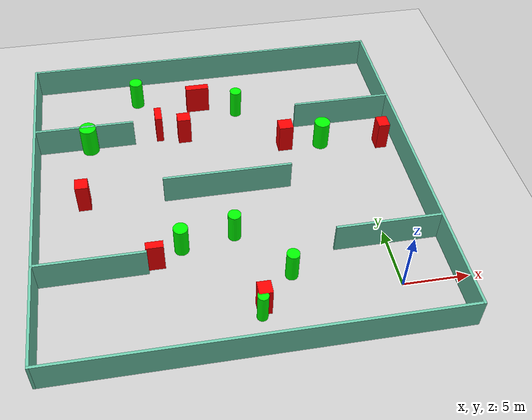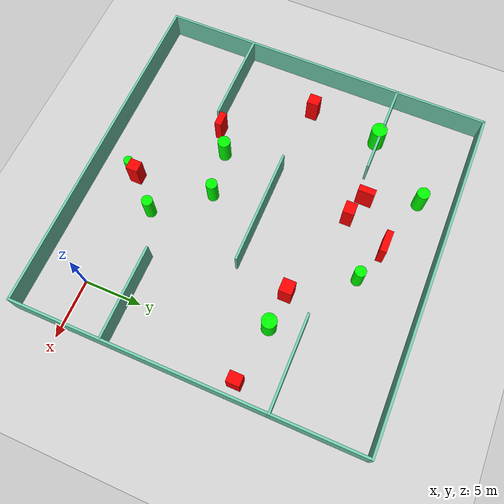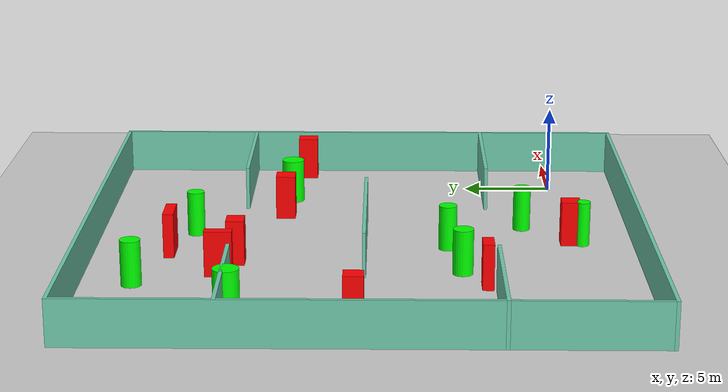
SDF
<sdf version="1.7">
 <world name="default">
  <light name="sun" type="directional">
   <pose>0 0 10 0 -0 0</pose>
   <diffuse>0.8 0.8 0.8 1</diffuse>
   <specular>0.2 0.2 0.2 1</specular>
   <attenuation>
    <range>1000</range>
    <constant>0.9</constant>
    <linear>0.01</linear>
    <quadratic>0.001</quadratic>
   </attenuation>
   <direction>-0.5 0.1 -0.9</direction>
   <spot><inner_angle>0</inner_angle><outer_angle>0</outer_angle><falloff>0</falloff></spot>
  </light>
  <model name="ground_plane">
   <static>1</static>
   <link name="link">
    <collision name="collision">
     <geometry><plane><normal>0 0 1</normal><size>100 100</size></plane></geometry>
     <surface>
      <contact><collide_bitmask>65535</collide_bitmask></contact>
      <friction><ode><mu>100</mu><mu2>50</mu2></ode></friction>
     </surface>
    </collision>
    <visual name="visual">
     <cast_shadows>0</cast_shadows>
     <geometry><plane><normal>0 0 1</normal><size>100 100</size></plane></geometry>
     <material>
      <script><uri>file://media/materials/scripts/gazebo.material</uri><name>Gazebo/Grey</name></script>
     </material>
    </visual>
   </link>
  </model>
  <gravity>0 0 -9.8</gravity>
  <magnetic_field>6e-06 2.3e-05 -4.2e-05</magnetic_field>
  <atmosphere type="adiabatic"/>
  <physics type="ode">
   <max_step_size>0.001</max_step_size>
   <real_time_factor>1</real_time_factor>
   <real_time_update_rate>1000</real_time_update_rate>
  </physics>
  <scene><ambient>0.4 0.4 0.4 1</ambient><background>0.7 0.7 0.7 1</background><shadows>1</shadows></scene>
  <spherical_coordinates>
   <surface_model>EARTH_WGS84</surface_model>
   <latitude_deg>0</latitude_deg>
   <longitude_deg>0</longitude_deg>
   <elevation>0</elevation>
   <heading_deg>0</heading_deg>
  </spherical_coordinates>
  <model name="my_base_walls">
   <link name="Wall_10">
    <collision name="Wall_10_Collision">
     <geometry><box><size>8.2 0.2 2.5</size></box></geometry>
     <pose>0 0 1.25 0 -0 0</pose>
    </collision>
    <visual name="Wall_10_Visual">
     <pose>0 0 1.25 0 -0 0</pose>
     <geometry><box><size>8.2 0.2 2.5</size></box></geometry>
     <material>
      <script><uri>file://media/materials/scripts/gazebo.material</uri><name>Gazebo/Grey</name></script>
      <ambient>0.435294 0.796078 0.67451 1</ambient>
     </material>
     <meta><layer>0</layer></meta>
    </visual>
    <pose>-11 -7 0 0 -0 0</pose>
   </link>
   <link name="Wall_12">
    <collision name="Wall_12_Collision">
     <geometry><box><size>8.2 0.2 2.5</size></box></geometry>
     <pose>0 0 1.25 0 -0 0</pose>
    </collision>
    <visual name="Wall_12_Visual">
     <pose>0 0 1.25 0 -0 0</pose>
     <geometry><box><size>8.2 0.2 2.5</size></box></geometry>
     <material>
      <script><uri>file://media/materials/scripts/gazebo.material</uri><name>Gazebo/Grey</name></script>
      <ambient>0.435294 0.796078 0.67451 1</ambient>
     </material>
     <meta><layer>0</layer></meta>
    </visual>
    <pose>-11 7 0 0 -0 0</pose>
   </link>
   <link name="Wall_14">
    <collision name="Wall_14_Collision">
     <geometry><box><size>8.2 0.2 2.5</size></box></geometry>
     <pose>0 0 1.25 0 -0 0</pose>
    </collision>
    <visual name="Wall_14_Visual">
     <pose>0 0 1.25 0 -0 0</pose>
     <geometry><box><size>8.2 0.2 2.5</size></box></geometry>
     <material>
      <script><uri>file://media/materials/scripts/gazebo.material</uri><name>Gazebo/Grey</name></script>
      <ambient>0.435294 0.796078 0.67451 1</ambient>
     </material>
     <meta><layer>0</layer></meta>
    </visual>
    <pose>11 7 0 0 -0 3.14159</pose>
   </link>
   <link name="Wall_16">
    <collision name="Wall_16_Collision">
     <geometry><box><size>10.2 0.2 2.5</size></box></geometry>
     <pose>0 0 1.25 0 -0 0</pose>
    </collision>
    <visual name="Wall_16_Visual">
     <pose>0 0 1.25 0 -0 0</pose>
     <geometry><box><size>10.2 0.2 2.5</size></box></geometry>
     <material>
      <script><uri>file://media/materials/scripts/gazebo.material</uri><name>Gazebo/Grey</name></script>
      <ambient>0.435294 0.796078 0.67451 1</ambient>
     </material>
     <meta><layer>0</layer></meta>
    </visual>
    <pose>0 0 0 0 -0 3.14159</pose>
   </link>
   <link name="Wall_2">
    <collision name="Wall_2_Collision">
     <geometry><box><size>30.2 0.2 2.5</size></box></geometry>
     <pose>0 0 1.25 0 -0 0</pose>
    </collision>
    <visual name="Wall_2_Visual">
     <pose>0 0 1.25 0 -0 0</pose>
     <geometry><box><size>30.2 0.2 2.5</size></box></geometry>
     <material>
      <script><uri>file://media/materials/scripts/gazebo.material</uri><name>Gazebo/Grey</name></script>
      <ambient>0.435294 0.796078 0.67451 1</ambient>
     </material>
     <meta><layer>0</layer></meta>
    </visual>
    <pose>0 -15 0 0 -0 3.14159</pose>
   </link>
   <link name="Wall_3">
    <collision name="Wall_3_Collision">
     <geometry><box><size>30.2 0.2 2.5</size></box></geometry>
     <pose>0 0 1.25 0 -0 0</pose>
    </collision>
    <visual name="Wall_3_Visual">
     <pose>0 0 1.25 0 -0 0</pose>
     <geometry><box><size>30.2 0.2 2.5</size></box></geometry>
     <material>
      <script><uri>file://media/materials/scripts/gazebo.material</uri><name>Gazebo/Grey</name></script>
      <ambient>0.435294 0.796078 0.67451 1</ambient>
     </material>
     <meta><layer>0</layer></meta>
    </visual>
    <pose>-15 0 0 0 -0 1.5708</pose>
   </link>
   <link name="Wall_4">
    <collision name="Wall_4_Collision">
     <geometry><box><size>30.2 0.2 2.5</size></box></geometry>
     <pose>0 0 1.25 0 -0 0</pose>
    </collision>
    <visual name="Wall_4_Visual">
     <pose>0 0 1.25 0 -0 0</pose>
     <geometry><box><size>30.2 0.2 2.5</size></box></geometry>
     <material>
      <script><uri>file://media/materials/scripts/gazebo.material</uri><name>Gazebo/Grey</name></script>
      <ambient>0.435294 0.796078 0.67451 1</ambient>
     </material>
     <meta><layer>0</layer></meta>
    </visual>
    <pose>0 15 0 0 -0 0</pose>
   </link>
   <link name="Wall_6">
    <collision name="Wall_6_Collision">
     <geometry><box><size>30.2 0.2 2.5</size></box></geometry>
     <pose>0 0 1.25 0 -0 0</pose>
    </collision>
    <visual name="Wall_6_Visual">
     <pose>0 0 1.25 0 -0 0</pose>
     <geometry><box><size>30.2 0.2 2.5</size></box></geometry>
     <material>
      <script><uri>file://media/materials/scripts/gazebo.material</uri><name>Gazebo/Grey</name></script>
      <ambient>0.435294 0.796078 0.67451 1</ambient>
     </material>
     <meta><layer>0</layer></meta>
    </visual>
    <pose>15 0 0 0 -0 1.5708</pose>
   </link>
   <link name="Wall_8">
    <collision name="Wall_8_Collision">
     <geometry><box><size>8.2 0.2 2.5</size></box></geometry>
     <pose>0 0 1.25 0 -0 0</pose>
    </collision>
    <visual name="Wall_8_Visual">
     <pose>0 0 1.25 0 -0 0</pose>
     <geometry><box><size>8.2 0.2 2.5</size></box></geometry>
     <material>
      <script><uri>file://media/materials/scripts/gazebo.material</uri><name>Gazebo/Grey</name></script>
      <ambient>0.435294 0.796078 0.67451 1</ambient>
     </material>
     <meta><layer>0</layer></meta>
    </visual>
    <pose>11 -7 0 0 -0 3.14159</pose>
   </link>
   <static>1</static>
   <pose>-11 11 0 0 -0 0</pose>
  </model>
  <model name="cylinder1">
   <static>1</static>
   <link name="link">
    <inertial>
     <mass>1</mass>
     <inertia><ixx>0.5</ixx><ixy>0</ixy><ixz>0</ixz><iyy>0.5</iyy><iyz>0</iyz><izz>1</izz></inertia>
    </inertial>
    <collision name="collision">
     <geometry><cylinder><radius>0.6866241793155884</radius><length>2.5</length></cylinder></geometry>
    </collision>
    <visual name="visual">
     <geometry><cylinder><radius>0.6866241793155884</radius><length>2.5</length></cylinder></geometry>
     <material>
      <ambient>0 1 0 1</ambient>
      <diffuse>0 1 0 1</diffuse>
      <specular>0.1 0.1 0.1 1</specular>
      <emissive>0 0 0 0</emissive>
     </material>
    </visual>
   </link>
   <pose>-21.684882138177052 17.792490504185686 1.25 0 0 0</pose>
  </model>
  <model name="cylinder2">
   <static>1</static>
   <link name="link">
    <inertial>
     <mass>1</mass>
     <inertia><ixx>0.5</ixx><ixy>0</ixy><ixz>0</ixz><iyy>0.5</iyy><iyz>0</iyz><izz>1</izz></inertia>
    </inertial>
    <collision name="collision">
     <geometry><cylinder><radius>0.4020931272305529</radius><length>2.5</length></cylinder></geometry>
    </collision>
    <visual name="visual">
     <geometry><cylinder><radius>0.4020931272305529</radius><length>2.5</length></cylinder></geometry>
     <material>
      <ambient>0 1 0 1</ambient>
      <diffuse>0 1 0 1</diffuse>
      <specular>0.1 0.1 0.1 1</specular>
      <emissive>0 0 0 0</emissive>
     </material>
    </visual>
   </link>
   <pose>-10.481023570341964 -1.0619917529188885 1.25 0 0 0</pose>
  </model>
  <model name="cylinder3">
   <static>1</static>
   <link name="link">
    <inertial>
     <mass>1</mass>
     <inertia><ixx>0.5</ixx><ixy>0</ixy><ixz>0</ixz><iyy>0.5</iyy><iyz>0</iyz><izz>1</izz></inertia>
    </inertial>
    <collision name="collision">
     <geometry><cylinder><radius>0.640117778149795</radius><length>2.5</length></cylinder></geometry>
    </collision>
    <visual name="visual">
     <geometry><cylinder><radius>0.640117778149795</radius><length>2.5</length></cylinder></geometry>
     <material>
      <ambient>0 1 0 1</ambient>
      <diffuse>0 1 0 1</diffuse>
      <specular>0.1 0.1 0.1 1</specular>
      <emissive>0 0 0 0</emissive>
     </material>
    </visual>
   </link>
   <pose>-2.3227957222098183 15.402289857207013 1.25 0 0 0</pose>
  </model>
  <model name="cylinder4">
   <static>1</static>
   <link name="link">
    <inertial>
     <mass>1</mass>
     <inertia><ixx>0.5</ixx><ixy>0</ixy><ixz>0</ixz><iyy>0.5</iyy><iyz>0</iyz><izz>1</izz></inertia>
    </inertial>
    <collision name="collision">
     <geometry><cylinder><radius>0.5546344849231897</radius><length>2.5</length></cylinder></geometry>
    </collision>
    <visual name="visual">
     <geometry><cylinder><radius>0.5546344849231897</radius><length>2.5</length></cylinder></geometry>
     <material>
      <ambient>0 1 0 1</ambient>
      <diffuse>0 1 0 1</diffuse>
      <specular>0.1 0.1 0.1 1</specular>
      <emissive>0 0 0 0</emissive>
     </material>
    </visual>
   </link>
   <pose>-15.32380813192388 5.743344933075901 1.25 0 0 0</pose>
  </model>
  <model name="cylinder5">
   <static>1</static>
   <link name="link">
    <inertial>
     <mass>1</mass>
     <inertia><ixx>0.5</ixx><ixy>0</ixy><ixz>0</ixz><iyy>0.5</iyy><iyz>0</iyz><izz>1</izz></inertia>
    </inertial>
    <collision name="collision">
     <geometry><cylinder><radius>0.5498998923210822</radius><length>2.5</length></cylinder></geometry>
    </collision>
    <visual name="visual">
     <geometry><cylinder><radius>0.5498998923210822</radius><length>2.5</length></cylinder></geometry>
     <material>
      <ambient>0 1 0 1</ambient>
      <diffuse>0 1 0 1</diffuse>
      <specular>0.1 0.1 0.1 1</specular>
      <emissive>0 0 0 0</emissive>
     </material>
    </visual>
   </link>
   <pose>-17.317509882728192 23.14836767238335 1.25 0 0 0</pose>
  </model>
  <model name="cylinder6">
   <static>1</static>
   <link name="link">
    <inertial>
     <mass>1</mass>
     <inertia><ixx>0.5</ixx><ixy>0</ixy><ixz>0</ixz><iyy>0.5</iyy><iyz>0</iyz><izz>1</izz></inertia>
    </inertial>
    <collision name="collision">
     <geometry><cylinder><radius>0.4987286458904779</radius><length>2.5</length></cylinder></geometry>
    </collision>
    <visual name="visual">
     <geometry><cylinder><radius>0.4987286458904779</radius><length>2.5</length></cylinder></geometry>
     <material>
      <ambient>0 1 0 1</ambient>
      <diffuse>0 1 0 1</diffuse>
      <specular>0.1 0.1 0.1 1</specular>
      <emissive>0 0 0 0</emissive>
     </material>
    </visual>
   </link>
   <pose>-11.222328033239341 6.432936256054903 1.25 0 0 0</pose>
  </model>
  <model name="cylinder7">
   <static>1</static>
   <link name="link">
    <inertial>
     <mass>1</mass>
     <inertia><ixx>0.5</ixx><ixy>0</ixy><ixz>0</ixz><iyy>0.5</iyy><iyz>0</iyz><izz>1</izz></inertia>
    </inertial>
    <collision name="collision">
     <geometry><cylinder><radius>0.4849629325009399</radius><length>2.5</length></cylinder></geometry>
    </collision>
    <visual name="visual">
     <geometry><cylinder><radius>0.4849629325009399</radius><length>2.5</length></cylinder></geometry>
     <material>
      <ambient>0 1 0 1</ambient>
      <diffuse>0 1 0 1</diffuse>
      <specular>0.1 0.1 0.1 1</specular>
      <emissive>0 0 0 0</emissive>
     </material>
    </visual>
   </link>
   <pose>-8.825860808476596 20.57160043997965 1.25 0 0 0</pose>
  </model>
  <model name="cylinder8">
   <static>1</static>
   <link name="link">
    <inertial>
     <mass>1</mass>
     <inertia><ixx>0.5</ixx><ixy>0</ixy><ixz>0</ixz><iyy>0.5</iyy><iyz>0</iyz><izz>1</izz></inertia>
    </inertial>
    <collision name="collision">
     <geometry><cylinder><radius>0.48254479386920474</radius><length>2.5</length></cylinder></geometry>
    </collision>
    <visual name="visual">
     <geometry><cylinder><radius>0.48254479386920474</radius><length>2.5</length></cylinder></geometry>
     <material>
      <ambient>0 1 0 1</ambient>
      <diffuse>0 1 0 1</diffuse>
      <specular>0.1 0.1 0.1 1</specular>
      <emissive>0 0 0 0</emissive>
     </material>
    </visual>
   </link>
   <pose>-7.717140296960274 2.1302035844005243 1.25 0 0 0</pose>
  </model>
  <model name="box1">
   <static>1</static>
   <link name="link">
    <inertial>
     <mass>1</mass>
     <inertia><ixx>0.083</ixx><ixy>0</ixy><ixz>0</ixz><iyy>0.083</iyy><iyz>0</iyz><izz>0.083</izz></inertia>
    </inertial>
    <collision name="collision">
     <geometry><box><size>1.167624912538019 1.108562035982584 2.5</size></box></geometry>
    </collision>
    <visual name="visual">
     <geometry><box><size>1.167624912538019 1.108562035982584 2.5</size></box></geometry>
     <material>
      <ambient>1 0 0 1</ambient>
      <diffuse>1 0 0 1</diffuse>
      <specular>0.1 0.1 0.1 1</specular>
      <emissive>0 0 0 0</emissive>
     </material>
    </visual>
    <sensor name="my_contact" type="contact">
     <contact><collision>box_collision</collision><topic>__default_topic__</topic></contact>
    </sensor>
   </link>
   <pose>-5.415057713098914 15.67023308541497 1.25 0 0 0</pose>
  </model>
  <model name="box2">
   <static>1</static>
   <link name="link">
    <inertial>
     <mass>1</mass>
     <inertia><ixx>0.083</ixx><ixy>0</ixy><ixz>0</ixz><iyy>0.083</iyy><iyz>0</iyz><izz>0.083</izz></inertia>
    </inertial>
    <collision name="collision">
     <geometry><box><size>1.967518912423896 0.5845737912918852 2.5</size></box></geometry>
    </collision>
    <visual name="visual">
     <geometry><box><size>1.967518912423896 0.5845737912918852 2.5</size></box></geometry>
     <material>
      <ambient>1 0 0 1</ambient>
      <diffuse>1 0 0 1</diffuse>
      <specular>0.1 0.1 0.1 1</specular>
      <emissive>0 0 0 0</emissive>
     </material>
    </visual>
    <sensor name="my_contact" type="contact">
     <contact><collision>box_collision</collision><topic>__default_topic__</topic></contact>
    </sensor>
   </link>
   <pose>-12.078947067978383 21.67364776506823 1.25 0 0 0</pose>
  </model>
  <model name="box3">
   <static>1</static>
   <link name="link">
    <inertial>
     <mass>1</mass>
     <inertia><ixx>0.083</ixx><ixy>0</ixy><ixz>0</ixz><iyy>0.083</iyy><iyz>0</iyz><izz>0.083</izz></inertia>
    </inertial>
    <collision name="collision">
     <geometry><box><size>0.5847489308173117 1.4865565376857304 2.5</size></box></geometry>
    </collision>
    <visual name="visual">
     <geometry><box><size>0.5847489308173117 1.4865565376857304 2.5</size></box></geometry>
     <material>
      <ambient>1 0 0 1</ambient>
      <diffuse>1 0 0 1</diffuse>
      <specular>0.1 0.1 0.1 1</specular>
      <emissive>0 0 0 0</emissive>
     </material>
    </visual>
    <sensor name="my_contact" type="contact">
     <contact><collision>box_collision</collision><topic>__default_topic__</topic></contact>
    </sensor>
   </link>
   <pose>-15.766645847278184 18.714212144473134 1.25 0 0 0</pose>
  </model>
  <model name="box4">
   <static>1</static>
   <link name="link">
    <inertial>
     <mass>1</mass>
     <inertia><ixx>0.083</ixx><ixy>0</ixy><ixz>0</ixz><iyy>0.083</iyy><iyz>0</iyz><izz>0.083</izz></inertia>
    </inertial>
    <collision name="collision">
     <geometry><box><size>1.1016909473273784 0.9843914084535331 2.5</size></box></geometry>
    </collision>
    <visual name="visual">
     <geometry><box><size>1.1016909473273784 0.9843914084535331 2.5</size></box></geometry>
     <material>
      <ambient>1 0 0 1</ambient>
      <diffuse>1 0 0 1</diffuse>
      <specular>0.1 0.1 0.1 1</specular>
      <emissive>0 0 0 0</emissive>
     </material>
    </visual>
    <sensor name="my_contact" type="contact">
     <contact><collision>box_collision</collision><topic>__default_topic__</topic></contact>
    </sensor>
   </link>
   <pose>-13.679811329779278 17.949841467908644 1.25 0 0 0</pose>
  </model>
  <model name="box5">
   <static>1</static>
   <link name="link">
    <inertial>
     <mass>1</mass>
     <inertia><ixx>0.083</ixx><ixy>0</ixy><ixz>0</ixz><iyy>0.083</iyy><iyz>0</iyz><izz>0.083</izz></inertia>
    </inertial>
    <collision name="collision">
     <geometry><box><size>0.9356496990141416 1.1467897688435333 2.5</size></box></geometry>
    </collision>
    <visual name="visual">
     <geometry><box><size>0.9356496990141416 1.1467897688435333 2.5</size></box></geometry>
     <material>
      <ambient>1 0 0 1</ambient>
      <diffuse>1 0 0 1</diffuse>
      <specular>0.1 0.1 0.1 1</specular>
      <emissive>0 0 0 0</emissive>
     </material>
    </visual>
    <sensor name="my_contact" type="contact">
     <contact><collision>box_collision</collision><topic>__default_topic__</topic></contact>
    </sensor>
   </link>
   <pose>2.673898033479798 14.70342200276513 1.25 0 0 0</pose>
  </model>
  <model name="box6">
   <static>1</static>
   <link name="link">
    <inertial>
     <mass>1</mass>
     <inertia><ixx>0.083</ixx><ixy>0</ixy><ixz>0</ixz><iyy>0.083</iyy><iyz>0</iyz><izz>0.083</izz></inertia>
    </inertial>
    <collision name="collision">
     <geometry><box><size>1.003744342269647 1.0498213731741264 2.5</size></box></geometry>
    </collision>
    <visual name="visual">
     <geometry><box><size>1.003744342269647 1.0498213731741264 2.5</size></box></geometry>
     <material>
      <ambient>1 0 0 1</ambient>
      <diffuse>1 0 0 1</diffuse>
      <specular>0.1 0.1 0.1 1</specular>
      <emissive>0 0 0 0</emissive>
     </material>
    </visual>
    <sensor name="my_contact" type="contact">
     <contact><collision>box_collision</collision><topic>__default_topic__</topic></contact>
    </sensor>
   </link>
   <pose>-10.246463419743009 -0.39175547176034664 1.25 0 0 0</pose>
  </model>
  <model name="box7">
   <static>1</static>
   <link name="link">
    <inertial>
     <mass>1</mass>
     <inertia><ixx>0.083</ixx><ixy>0</ixy><ixz>0</ixz><iyy>0.083</iyy><iyz>0</iyz><izz>0.083</izz></inertia>
    </inertial>
    <collision name="collision">
     <geometry><box><size>1.3086834079493113 0.611253774726255 2.5</size></box></geometry>
    </collision>
    <visual name="visual">
     <geometry><box><size>1.3086834079493113 0.611253774726255 2.5</size></box></geometry>
     <material>
      <ambient>1 0 0 1</ambient>
      <diffuse>1 0 0 1</diffuse>
      <specular>0.1 0.1 0.1 1</specular>
      <emissive>0 0 0 0</emissive>
     </material>
    </visual>
    <sensor name="my_contact" type="contact">
     <contact><collision>box_collision</collision><topic>__default_topic__</topic></contact>
    </sensor>
   </link>
   <pose>-17.334388453900342 4.5161883266276694 1.25 0 0 0</pose>
  </model>
  <model name="box8">
   <static>1</static>
   <link name="link">
    <inertial>
     <mass>1</mass>
     <inertia><ixx>0.083</ixx><ixy>0</ixy><ixz>0</ixz><iyy>0.083</iyy><iyz>0</iyz><izz>0.083</izz></inertia>
    </inertial>
    <collision name="collision">
     <geometry><box><size>1.0034308194523232 1.0573867192993116 2.5</size></box></geometry>
    </collision>
    <visual name="visual">
     <geometry><box><size>1.0034308194523232 1.0573867192993116 2.5</size></box></geometry>
     <material>
      <ambient>1 0 0 1</ambient>
      <diffuse>1 0 0 1</diffuse>
      <specular>0.1 0.1 0.1 1</specular>
      <emissive>0 0 0 0</emissive>
     </material>
    </visual>
    <sensor name="my_contact" type="contact">
     <contact><collision>box_collision</collision><topic>__default_topic__</topic></contact>
    </sensor>
   </link>
   <pose>-22.352031132231723 11.4356152088489 1.25 0 0 0</pose>
  </model>
 </world>
</sdf>
